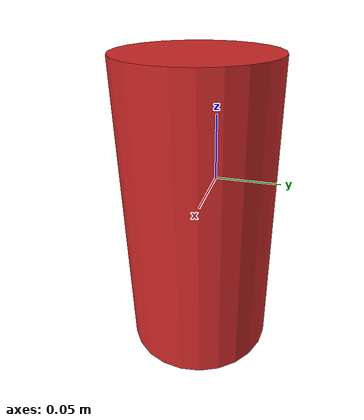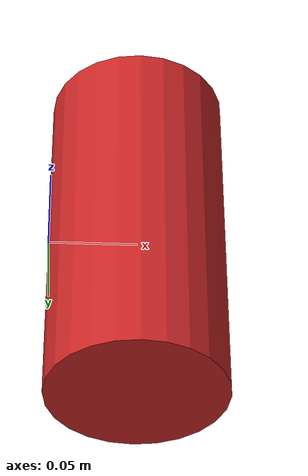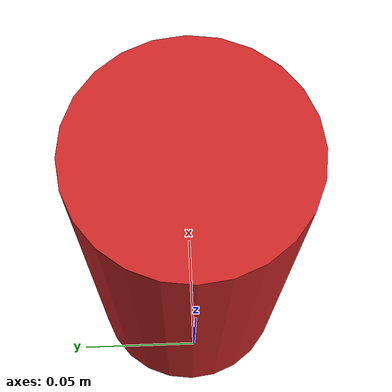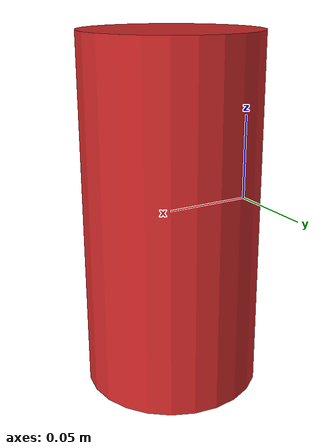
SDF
<?xml version="1.0" encoding="utf-8"?>
<sdf version="1.6">
  <model name="simple_cylinder">
    <static>false</static>
    <pose>0.05 0 0 1.5708 0 0</pose>
    <position>0 0 0 0 0 0</position>
    <link name="cylinder_link">
      <inertial>
        <mass>1.0</mass>
        <inertia>
          <ixx>0.000625</ixx>
          <ixy>0.0</ixy>
          <ixz>0.0</ixz>
          <iyy>0.000125</iyy>
          <iyz>0.0</iyz>
          <izz>0.000625</izz>
        </inertia>
      </inertial>
      <collision name="collision">
        <geometry>
          <cylinder>
            <radius>0.05</radius>
            <length>0.2</length>
          </cylinder>
        </geometry>
      </collision>
      <visual name="visual">
        <geometry>
          <cylinder>
            <radius>0.05</radius>
            <length>0.2</length>
          </cylinder>
        </geometry>
        <material>
          <script>
            <uri>file://media/materials/scripts/gazebo.material</uri>
            <name>Gazebo/Red</name>
          </script>
        </material>
	<pose>0 0 0 1.5708 0 0</pose>
      </visual>
    </link>
  </model>
</sdf>
